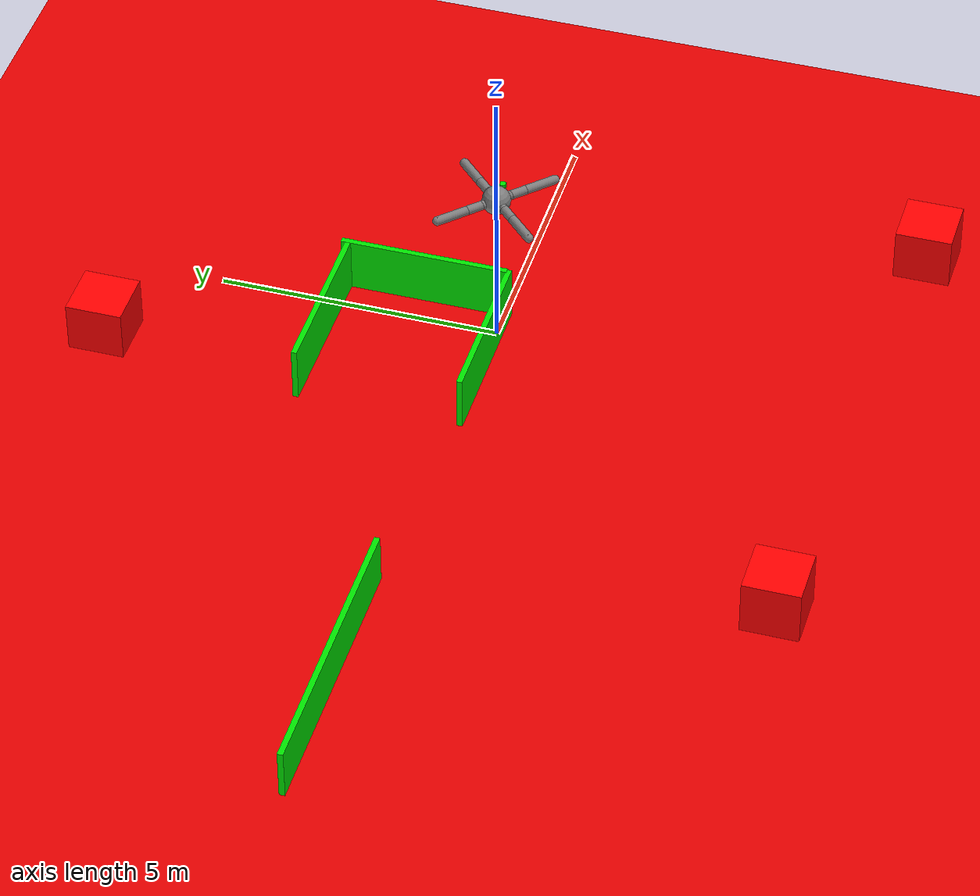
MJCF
<mujoco>
    <worldbody>
    <body name="torso" pos="0 0 3">
    <camera name="track" mode="trackcom" pos="0 -3 0.3" xyaxes="1 0 0 0 0 1"/>
    <site name="box_range" type="box" pos="0.4 0 0" size=".05 .05 .05" rgba="0 .9 0 1" euler="0 90 0"/>
    <geom name="torso_geom" pos="0 0 0" size="0.25" type="sphere"/>
    <joint armature="0" damping="0" limited="false" margin="0.01" name="root" pos="0 0 0" type="free"/>
    <body name="front_left_leg" pos="0 0 0">
      <geom fromto="0.0 0.0 0.0 0.2 0.2 0.0" name="aux_1_geom" size="0.08" type="capsule"/>
      <body name="aux_1" pos="0.2 0.2 0">
        <joint axis="0 0 1" name="hip_1" pos="0.0 0.0 0.0" range="-30 30" type="hinge"/>
        <geom fromto="0.0 0.0 0.0 0.2 0.2 0.0" name="left_leg_geom" size="0.08" type="capsule"/>
        <body pos="0.2 0.2 0">
          <joint axis="-1 1 0" name="ankle_1" pos="0.0 0.0 0.0" range="30 70" type="hinge"/>
          <geom fromto="0.0 0.0 0.0 0.4 0.4 0.0" name="left_ankle_geom" size="0.08" type="capsule"/>
        </body>
      </body>
    </body>
    <body name="front_right_leg" pos="0 0 0">
      <geom fromto="0.0 0.0 0.0 -0.2 0.2 0.0" name="aux_2_geom" size="0.08" type="capsule"/>
      <body name="aux_2" pos="-0.2 0.2 0">
        <joint axis="0 0 1" name="hip_2" pos="0.0 0.0 0.0" range="-30 30" type="hinge"/>
        <geom fromto="0.0 0.0 0.0 -0.2 0.2 0.0" name="right_leg_geom" size="0.08" type="capsule"/>
        <body pos="-0.2 0.2 0">
          <joint axis="1 1 0" name="ankle_2" pos="0.0 0.0 0.0" range="-70 -30" type="hinge"/>
          <geom fromto="0.0 0.0 0.0 -0.4 0.4 0.0" name="right_ankle_geom" size="0.08" type="capsule"/>
        </body>
      </body>
    </body>
    <body name="back_leg" pos="0 0 0">
      <geom fromto="0.0 0.0 0.0 -0.2 -0.2 0.0" name="aux_3_geom" size="0.08" type="capsule"/>
      <body name="aux_3" pos="-0.2 -0.2 0">
        <joint axis="0 0 1" name="hip_3" pos="0.0 0.0 0.0" range="-30 30" type="hinge"/>
        <geom fromto="0.0 0.0 0.0 -0.2 -0.2 0.0" name="back_leg_geom" size="0.08" type="capsule"/>
        <body pos="-0.2 -0.2 0">
          <joint axis="-1 1 0" name="ankle_3" pos="0.0 0.0 0.0" range="-70 -30" type="hinge"/>
          <geom fromto="0.0 0.0 0.0 -0.4 -0.4 0.0" name="third_ankle_geom" size="0.08" type="capsule"/>
        </body>
      </body>
    </body>
    <body name="right_back_leg" pos="0 0 0">
      <geom fromto="0.0 0.0 0.0 0.2 -0.2 0.0" name="aux_4_geom" size="0.08" type="capsule"/>
      <body name="aux_4" pos="0.2 -0.2 0">
        <joint axis="0 0 1" name="hip_4" pos="0.0 0.0 0.0" range="-30 30" type="hinge"/>
        <geom fromto="0.0 0.0 0.0 0.2 -0.2 0.0" name="rightback_leg_geom" size="0.08" type="capsule"/>
        <body pos="0.2 -0.2 0">
          <joint axis="1 1 0" name="ankle_4" pos="0.0 0.0 0.0" range="30 70" type="hinge"/>
          <geom fromto="0.0 0.0 0.0 0.4 -0.4 0.0" name="fourth_ankle_geom" size="0.08" type="capsule"/>
        </body>
      </body>
    </body>
    </body>
    <light diffuse=".5 .5 .5" pos="0 0 3" dir="0 0 -1" />
    <geom type="plane" size="15 15 3.330669E-16" rgba=".9 0 0 1" />
    <body pos="0.53 1.471 0.5">
      <geom type="box" size="0.05 1.5 0.5" euler="0 0 0" rgba="0 .9 0 1" />
    </body>
    <body pos="-0.934 -0.053 0.488">
      <geom type="box" size="1.5 0.05 0.5" euler="0 0 0" rgba="0 .9 0 1" />
    </body>
    <body pos="-1.027519 2.838878 0.5085219">
      <geom type="box" size="1.5 0.05 0.5" euler="0 0 0" rgba="0 .9 0 1" />
    </body>
    <body pos="3.927995 -6.745218 0.4348531" name="target_1">
      <geom type="box" size="0.5 0.5 0.5" euler="0 0 0" rgba="255 0 0 1" />
    </body>
    <body pos="-1.864272 6.520146 0.386694" name="target_3">
      <geom type="box" size="0.5 0.5 0.5" euler="0 0 0" rgba="255 0 0 1" />
    </body>
    <body pos="-8.812729 0.1686049 0.4022825">
      <geom type="box" size="2.5 0.05 0.5" euler="0 0 0" rgba="0 .9 0 1" />
    </body>
    <body pos="-5.367813 -6.286523 0.5278883" name="target_2">
      <geom type="box" size="0.5 0.5 0.5" euler="0 0 0" rgba="255 0 0 1" />
    </body>
  </worldbody>
  <actuator>
    <motor ctrllimited="true" ctrlrange="-1.0 1.0" joint="hip_4" gear="150"/>
    <motor ctrllimited="true" ctrlrange="-1.0 1.0" joint="ankle_4" gear="150"/>
    <motor ctrllimited="true" ctrlrange="-1.0 1.0" joint="hip_1" gear="150"/>
    <motor ctrllimited="true" ctrlrange="-1.0 1.0" joint="ankle_1" gear="150"/>
    <motor ctrllimited="true" ctrlrange="-1.0 1.0" joint="hip_2" gear="150"/>
    <motor ctrllimited="true" ctrlrange="-1.0 1.0" joint="ankle_2" gear="150"/>
    <motor ctrllimited="true" ctrlrange="-1.0 1.0" joint="hip_3" gear="150"/>
    <motor ctrllimited="true" ctrlrange="-1.0 1.0" joint="ankle_3" gear="150"/>
  </actuator>

  <sensor>
    <rangefinder name="box1" site="box_range" cutoff="20"/>
    <frameyaxis name="yAxis" objtype="site" objname="box_range"/>
  </sensor>
</mujoco>
